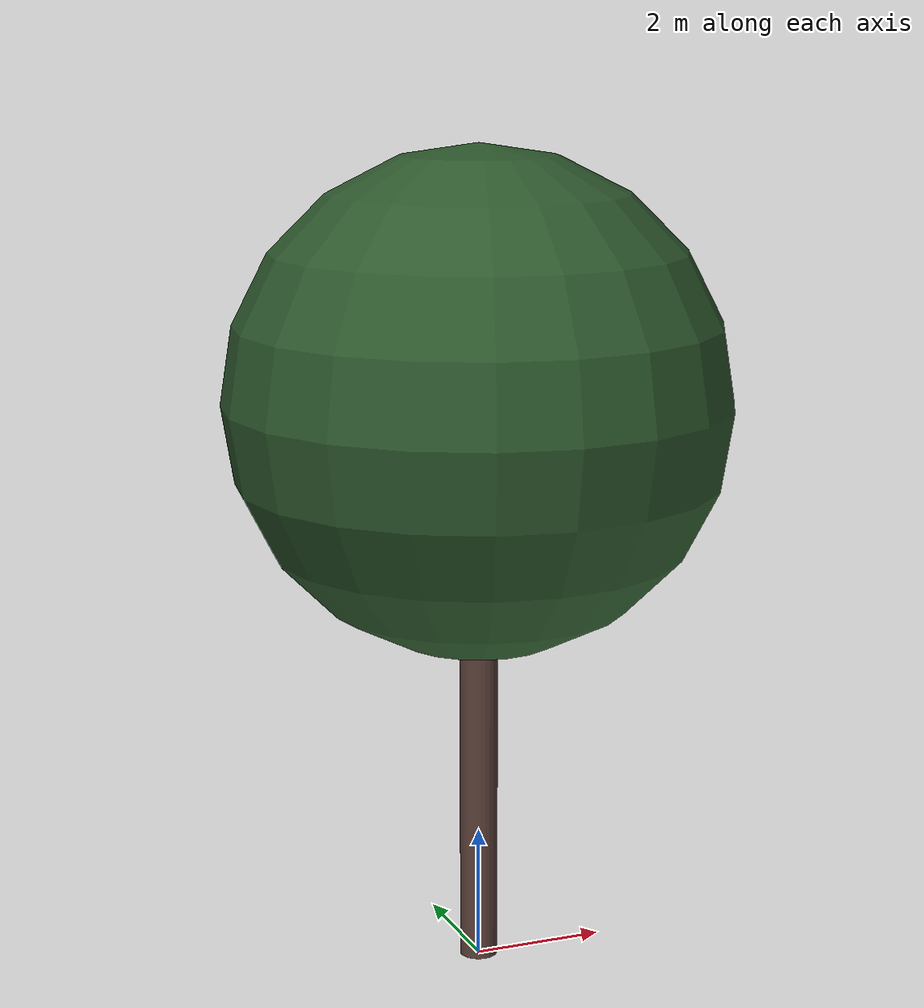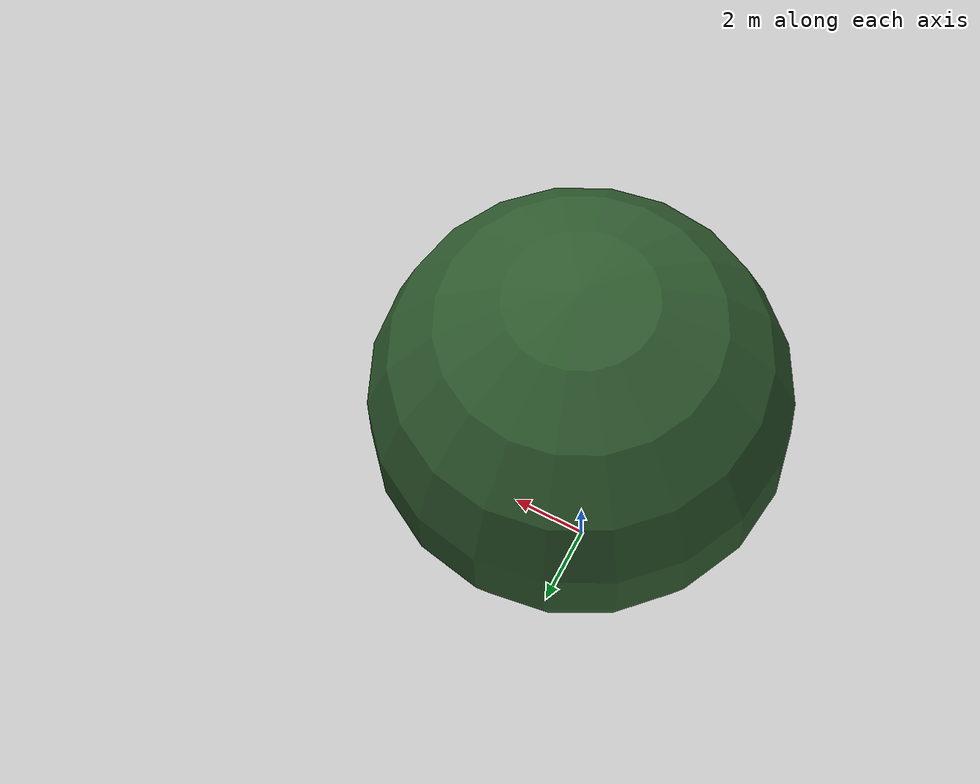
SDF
<?xml version="1.0" ?>
<sdf version="1.10">
  <model name="pin_parasol_03">
    <static>true</static>

    <!-- Tronc -->
    <link name="trunk">
      <pose>0 0 3.7509171362804525 0 0 0</pose>
      <visual name="trunk_visual">
        <geometry>
          <cylinder>
            <radius>0.28484469040255156</radius>
            <length>7.501834272560905</length>
          </cylinder>
        </geometry>
        <material>
          <ambient>0.36 0.25 0.22 1</ambient>
          <diffuse>0.36 0.25 0.22 1</diffuse>
          <specular>0.1 0.1 0.1 1</specular>
        </material>
      </visual>
      <collision name="trunk_collision">
        <geometry>
          <cylinder>
            <radius>0.28484469040255156</radius>
            <length>7.501834272560905</length>
          </cylinder>
        </geometry>
      </collision>
    </link>

    <!-- Feuillage -->
    <link name="crown">
      <pose>0 0 8.632692511633287 0 0 0</pose>
      <visual name="crown_visual">
        <geometry>
          <sphere>
              <radius>3.7695274635746108</radius>
            </sphere>
        </geometry>
        <material>
          <ambient>0.18 0.35 0.18 1</ambient>
          <diffuse>0.18 0.35 0.18 1</diffuse>
          <specular>0.1 0.1 0.1 1</specular>
        </material>
      </visual>
      <collision name="crown_collision">
        <geometry>
          <sphere>
            <radius>3.015621970859689</radius>
          </sphere>
        </geometry>
      </collision>
    </link>

    <!-- Joint tronc-feuillage -->
    <joint name="trunk_crown_joint" type="fixed">
      <parent>trunk</parent>
      <child>crown</child>
    </joint>

  </model>
</sdf>
